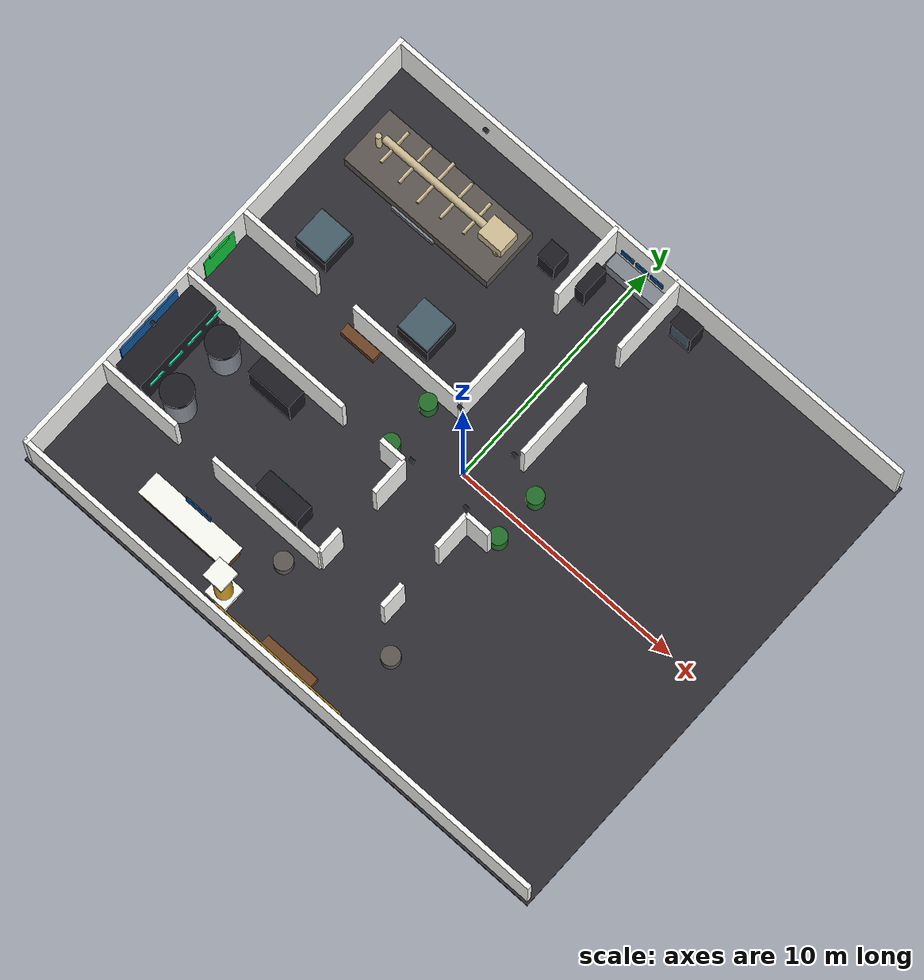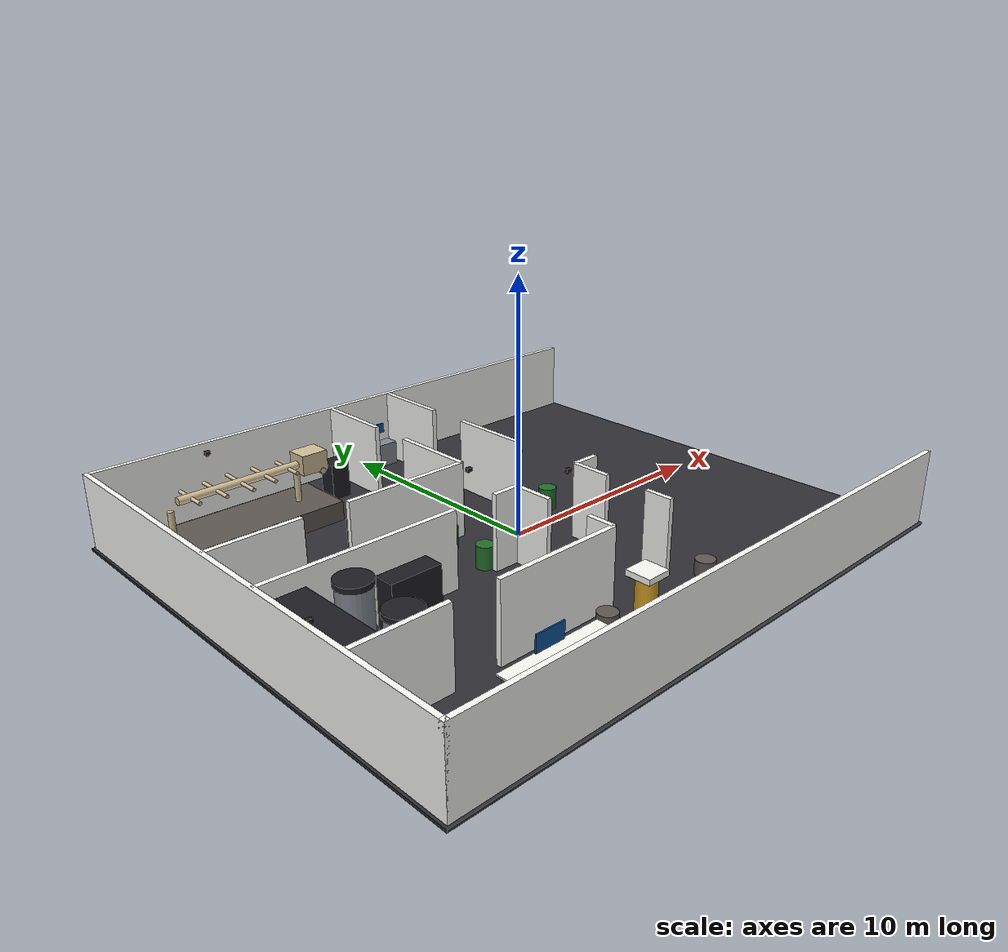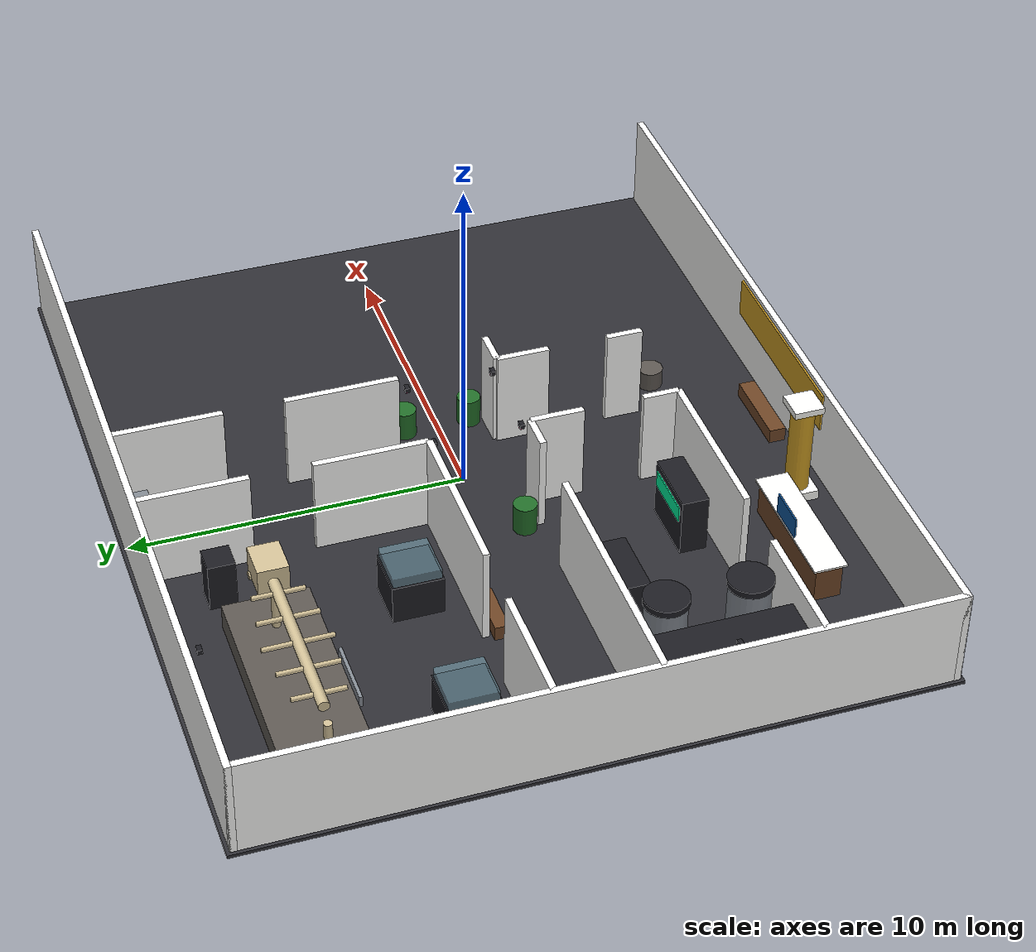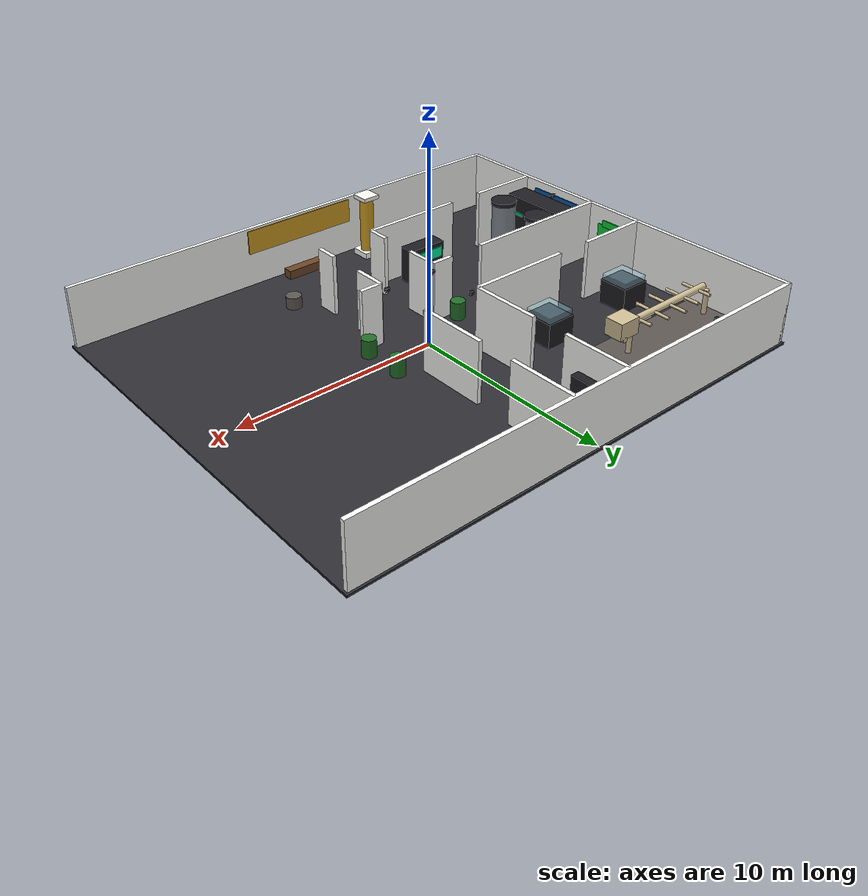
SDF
<sdf version="1.9">
 <world name="museum_world">
  <model name="centennial_robotics_museum">
   <static>true</static>
   <link name="floor">
    <pose>0 0 -0.05 0 0 0.0</pose>
    <visual name="visual">
     <geometry><box><size>24.4 20.4 0.1</size></box></geometry>
     <material>
      <ambient>0.16 0.16 0.18 1.0</ambient>
      <diffuse>0.184 0.184 0.207 1.0</diffuse>
      <specular>0.45 0.45 0.5 1</specular>
      <emissive>0.0 0.0 0.0 1</emissive>
     </material>
    </visual>
    <collision name="collision"><geometry><box><size>24.4 20.4 0.1</size></box></geometry></collision>
   </link>
   <link name="outer_s_0">
    <pose>0.0 -10.0 1.5 0 0 0.0</pose>
    <visual name="visual">
     <geometry><box><size>24.2 0.2 3.0</size></box></geometry>
     <material>
      <ambient>0.88 0.88 0.86 1.0</ambient>
      <diffuse>1.0 1.0 0.9889999999999999 1.0</diffuse>
      <specular>0.1 0.1 0.1 1</specular>
      <emissive>0.0 0.0 0.0 1</emissive>
     </material>
    </visual>
    <collision name="collision"><geometry><box><size>24.2 0.2 3.0</size></box></geometry></collision>
   </link>
   <link name="outer_n_0">
    <pose>0.0 10.0 1.5 0 0 0.0</pose>
    <visual name="visual">
     <geometry><box><size>24.2 0.2 3.0</size></box></geometry>
     <material>
      <ambient>0.88 0.88 0.86 1.0</ambient>
      <diffuse>1.0 1.0 0.9889999999999999 1.0</diffuse>
      <specular>0.1 0.1 0.1 1</specular>
      <emissive>0.0 0.0 0.0 1</emissive>
     </material>
    </visual>
    <collision name="collision"><geometry><box><size>24.2 0.2 3.0</size></box></geometry></collision>
   </link>
   <link name="outer_w_0">
    <pose>-12.0 0.0 1.5 0 0 0.0</pose>
    <visual name="visual">
     <geometry><box><size>0.2 20.2 3.0</size></box></geometry>
     <material>
      <ambient>0.88 0.88 0.86 1.0</ambient>
      <diffuse>1.0 1.0 0.9889999999999999 1.0</diffuse>
      <specular>0.1 0.1 0.1 1</specular>
      <emissive>0.0 0.0 0.0 1</emissive>
     </material>
    </visual>
    <collision name="collision"><geometry><box><size>0.2 20.2 3.0</size></box></geometry></collision>
   </link>
   <link name="div_s_0">
    <pose>-10.2 -6.0 1.5 0 0 0.0</pose>
    <visual name="visual">
     <geometry><box><size>3.5999999999999996 0.2 3.0</size></box></geometry>
     <material>
      <ambient>0.88 0.88 0.86 1.0</ambient>
      <diffuse>1.0 1.0 0.9889999999999999 1.0</diffuse>
      <specular>0.1 0.1 0.1 1</specular>
      <emissive>0.0 0.0 0.0 1</emissive>
     </material>
    </visual>
    <collision name="collision">
     <geometry><box><size>3.5999999999999996 0.2 3.0</size></box></geometry>
    </collision>
   </link>
   <link name="div_s_1">
    <pose>-4.050000000000001 -6.0 1.5 0 0 0.0</pose>
    <visual name="visual">
     <geometry><box><size>5.1000000000000005 0.2 3.0</size></box></geometry>
     <material>
      <ambient>0.88 0.88 0.86 1.0</ambient>
      <diffuse>1.0 1.0 0.9889999999999999 1.0</diffuse>
      <specular>0.1 0.1 0.1 1</specular>
      <emissive>0.0 0.0 0.0 1</emissive>
     </material>
    </visual>
    <collision name="collision">
     <geometry><box><size>5.1000000000000005 0.2 3.0</size></box></geometry>
    </collision>
   </link>
   <link name="div_m_0">
    <pose>-8.2 -1.5 1.5 0 0 0.0</pose>
    <visual name="visual">
     <geometry><box><size>7.6 0.2 3.0</size></box></geometry>
     <material>
      <ambient>0.88 0.88 0.86 1.0</ambient>
      <diffuse>1.0 1.0 0.9889999999999999 1.0</diffuse>
      <specular>0.1 0.1 0.1 1</specular>
      <emissive>0.0 0.0 0.0 1</emissive>
     </material>
    </visual>
    <collision name="collision"><geometry><box><size>7.6 0.2 3.0</size></box></geometry></collision>
   </link>
   <link name="div_m_1">
    <pose>-2.0500000000000003 -1.5 1.5 0 0 0.0</pose>
    <visual name="visual">
     <geometry><box><size>1.1000000000000005 0.2 3.0</size></box></geometry>
     <material>
      <ambient>0.88 0.88 0.86 1.0</ambient>
      <diffuse>1.0 1.0 0.9889999999999999 1.0</diffuse>
      <specular>0.1 0.1 0.1 1</specular>
      <emissive>0.0 0.0 0.0 1</emissive>
     </material>
    </visual>
    <collision name="collision">
     <geometry><box><size>1.1000000000000005 0.2 3.0</size></box></geometry>
    </collision>
   </link>
   <link name="div_m_2">
    <pose>2.0500000000000003 -1.5 1.5 0 0 0.0</pose>
    <visual name="visual">
     <geometry><box><size>1.1000000000000005 0.2 3.0</size></box></geometry>
     <material>
      <ambient>0.88 0.88 0.86 1.0</ambient>
      <diffuse>1.0 1.0 0.9889999999999999 1.0</diffuse>
      <specular>0.1 0.1 0.1 1</specular>
      <emissive>0.0 0.0 0.0 1</emissive>
     </material>
    </visual>
    <collision name="collision">
     <geometry><box><size>1.1000000000000005 0.2 3.0</size></box></geometry>
    </collision>
   </link>
   <link name="div_n_0">
    <pose>-10.2 1.5 1.5 0 0 0.0</pose>
    <visual name="visual">
     <geometry><box><size>3.5999999999999996 0.2 3.0</size></box></geometry>
     <material>
      <ambient>0.88 0.88 0.86 1.0</ambient>
      <diffuse>1.0 1.0 0.9889999999999999 1.0</diffuse>
      <specular>0.1 0.1 0.1 1</specular>
      <emissive>0.0 0.0 0.0 1</emissive>
     </material>
    </visual>
    <collision name="collision">
     <geometry><box><size>3.5999999999999996 0.2 3.0</size></box></geometry>
    </collision>
   </link>
   <link name="div_n_1">
    <pose>-4.050000000000001 1.5 1.5 0 0 0.0</pose>
    <visual name="visual">
     <geometry><box><size>5.1000000000000005 0.2 3.0</size></box></geometry>
     <material>
      <ambient>0.88 0.88 0.86 1.0</ambient>
      <diffuse>1.0 1.0 0.9889999999999999 1.0</diffuse>
      <specular>0.1 0.1 0.1 1</specular>
      <emissive>0.0 0.0 0.0 1</emissive>
     </material>
    </visual>
    <collision name="collision">
     <geometry><box><size>5.1000000000000005 0.2 3.0</size></box></geometry>
    </collision>
   </link>
   <link name="cor_sw_0">
    <pose>-1.5 -5.45 1.5 0 0 0.0</pose>
    <visual name="visual">
     <geometry><box><size>0.2 1.0999999999999996 3.0</size></box></geometry>
     <material>
      <ambient>0.88 0.88 0.86 1.0</ambient>
      <diffuse>1.0 1.0 0.9889999999999999 1.0</diffuse>
      <specular>0.1 0.1 0.1 1</specular>
      <emissive>0.0 0.0 0.0 1</emissive>
     </material>
    </visual>
    <collision name="collision">
     <geometry><box><size>0.2 1.0999999999999996 3.0</size></box></geometry>
    </collision>
   </link>
   <link name="cor_sw_1">
    <pose>-1.5 -2.3000000000000003 1.5 0 0 0.0</pose>
    <visual name="visual">
     <geometry><box><size>0.2 1.6000000000000005 3.0</size></box></geometry>
     <material>
      <ambient>0.88 0.88 0.86 1.0</ambient>
      <diffuse>1.0 1.0 0.9889999999999999 1.0</diffuse>
      <specular>0.1 0.1 0.1 1</specular>
      <emissive>0.0 0.0 0.0 1</emissive>
     </material>
    </visual>
    <collision name="collision">
     <geometry><box><size>0.2 1.6000000000000005 3.0</size></box></geometry>
    </collision>
   </link>
   <link name="cor_se_0">
    <pose>1.5 -5.45 1.5 0 0 0.0</pose>
    <visual name="visual">
     <geometry><box><size>0.2 1.0999999999999996 3.0</size></box></geometry>
     <material>
      <ambient>0.88 0.88 0.86 1.0</ambient>
      <diffuse>1.0 1.0 0.9889999999999999 1.0</diffuse>
      <specular>0.1 0.1 0.1 1</specular>
      <emissive>0.0 0.0 0.0 1</emissive>
     </material>
    </visual>
    <collision name="collision">
     <geometry><box><size>0.2 1.0999999999999996 3.0</size></box></geometry>
    </collision>
   </link>
   <link name="cor_se_1">
    <pose>1.5 -2.3000000000000003 1.5 0 0 0.0</pose>
    <visual name="visual">
     <geometry><box><size>0.2 1.6000000000000005 3.0</size></box></geometry>
     <material>
      <ambient>0.88 0.88 0.86 1.0</ambient>
      <diffuse>1.0 1.0 0.9889999999999999 1.0</diffuse>
      <specular>0.1 0.1 0.1 1</specular>
      <emissive>0.0 0.0 0.0 1</emissive>
     </material>
    </visual>
    <collision name="collision">
     <geometry><box><size>0.2 1.6000000000000005 3.0</size></box></geometry>
    </collision>
   </link>
   <link name="cor_nw_0">
    <pose>-1.5 3.2 1.5 0 0 0.0</pose>
    <visual name="visual">
     <geometry><box><size>0.2 3.4000000000000004 3.0</size></box></geometry>
     <material>
      <ambient>0.88 0.88 0.86 1.0</ambient>
      <diffuse>1.0 1.0 0.9889999999999999 1.0</diffuse>
      <specular>0.1 0.1 0.1 1</specular>
      <emissive>0.0 0.0 0.0 1</emissive>
     </material>
    </visual>
    <collision name="collision">
     <geometry><box><size>0.2 3.4000000000000004 3.0</size></box></geometry>
    </collision>
   </link>
   <link name="cor_nw_1">
    <pose>-1.5 8.35 1.5 0 0 0.0</pose>
    <visual name="visual">
     <geometry><box><size>0.2 3.3 3.0</size></box></geometry>
     <material>
      <ambient>0.88 0.88 0.86 1.0</ambient>
      <diffuse>1.0 1.0 0.9889999999999999 1.0</diffuse>
      <specular>0.1 0.1 0.1 1</specular>
      <emissive>0.0 0.0 0.0 1</emissive>
     </material>
    </visual>
    <collision name="collision"><geometry><box><size>0.2 3.3 3.0</size></box></geometry></collision>
   </link>
   <link name="cor_ne_0">
    <pose>1.5 3.2 1.5 0 0 0.0</pose>
    <visual name="visual">
     <geometry><box><size>0.2 3.4000000000000004 3.0</size></box></geometry>
     <material>
      <ambient>0.88 0.88 0.86 1.0</ambient>
      <diffuse>1.0 1.0 0.9889999999999999 1.0</diffuse>
      <specular>0.1 0.1 0.1 1</specular>
      <emissive>0.0 0.0 0.0 1</emissive>
     </material>
    </visual>
    <collision name="collision">
     <geometry><box><size>0.2 3.4000000000000004 3.0</size></box></geometry>
    </collision>
   </link>
   <link name="cor_ne_1">
    <pose>1.5 8.35 1.5 0 0 0.0</pose>
    <visual name="visual">
     <geometry><box><size>0.2 3.3 3.0</size></box></geometry>
     <material>
      <ambient>0.88 0.88 0.86 1.0</ambient>
      <diffuse>1.0 1.0 0.9889999999999999 1.0</diffuse>
      <specular>0.1 0.1 0.1 1</specular>
      <emissive>0.0 0.0 0.0 1</emissive>
     </material>
    </visual>
    <collision name="collision"><geometry><box><size>0.2 3.3 3.0</size></box></geometry></collision>
   </link>
   <link name="reception_desk">
    <pose>-6.0 -8.0 0.55 0 0 0.0</pose>
    <visual name="visual">
     <geometry><box><size>4.0 0.8 1.1</size></box></geometry>
     <material>
      <ambient>0.38 0.24 0.13 1.0</ambient>
      <diffuse>0.43699999999999994 0.27599999999999997 0.1495 1.0</diffuse>
      <specular>0.2 0.2 0.2 1</specular>
      <emissive>0.0 0.0 0.0 1</emissive>
     </material>
    </visual>
    <collision name="collision"><geometry><box><size>4.0 0.8 1.1</size></box></geometry></collision>
   </link>
   <link name="reception_top">
    <pose>-6.0 -8.0 1.13 0 0 0.0</pose>
    <visual name="visual">
     <geometry><box><size>4.2 1.0 0.06</size></box></geometry>
     <material>
      <ambient>0.9 0.89 0.85 1.0</ambient>
      <diffuse>1.0 1.0 0.9774999999999999 1.0</diffuse>
      <specular>0.8 0.8 0.8 1</specular>
      <emissive>0.0 0.0 0.0 1</emissive>
     </material>
    </visual>
    <collision name="collision"><geometry><box><size>4.2 1.0 0.06</size></box></geometry></collision>
   </link>
   <link name="reception_screen">
    <pose>-6.0 -7.55 1.45 0 0 0.0</pose>
    <visual name="visual">
     <geometry><box><size>1.2 0.05 0.7</size></box></geometry>
     <material>
      <ambient>0.05 0.3 0.55 1.0</ambient>
      <diffuse>0.057499999999999996 0.345 0.6325 1.0</diffuse>
      <specular>0.1 0.1 0.1 1</specular>
      <emissive>0.03 0.25 0.45 1</emissive>
     </material>
    </visual>
   </link>
   <link name="pillar_l_base">
    <pose>-3.5 -9.0 0.15 0 0 0.0</pose>
    <visual name="visual">
     <geometry><box><size>1.0 1.0 0.3</size></box></geometry>
     <material>
      <ambient>0.9 0.89 0.85 1.0</ambient>
      <diffuse>1.0 1.0 0.9774999999999999 1.0</diffuse>
      <specular>0.8 0.8 0.8 1</specular>
      <emissive>0.0 0.0 0.0 1</emissive>
     </material>
    </visual>
    <collision name="collision"><geometry><box><size>1.0 1.0 0.3</size></box></geometry></collision>
   </link>
   <link name="pillar_l">
    <pose>-3.5 -9.0 1.65 0 0 0</pose>
    <visual name="visual">
     <geometry><cylinder><radius>0.35</radius><length>3.0</length></cylinder></geometry>
     <material>
      <ambient>0.72 0.55 0.12 1.0</ambient>
      <diffuse>0.828 0.6325 0.13799999999999998 1.0</diffuse>
      <specular>1.0 0.9 0.6 1</specular>
      <emissive>0.0 0.0 0.0 1</emissive>
     </material>
    </visual>
    <collision name="collision">
     <geometry><cylinder><radius>0.35</radius><length>3.0</length></cylinder></geometry>
    </collision>
   </link>
   <link name="pillar_l_cap">
    <pose>-3.5 -9.0 3.2 0 0 0.0</pose>
    <visual name="visual">
     <geometry><box><size>0.9 0.9 0.2</size></box></geometry>
     <material>
      <ambient>0.9 0.89 0.85 1.0</ambient>
      <diffuse>1.0 1.0 0.9774999999999999 1.0</diffuse>
      <specular>0.8 0.8 0.8 1</specular>
      <emissive>0.0 0.0 0.0 1</emissive>
     </material>
    </visual>
    <collision name="collision"><geometry><box><size>0.9 0.9 0.2</size></box></geometry></collision>
   </link>
   <link name="lobby_bench">
    <pose>0.0 -9.4 0.22 0 0 0.0</pose>
    <visual name="visual">
     <geometry><box><size>2.4 0.5 0.45</size></box></geometry>
     <material>
      <ambient>0.38 0.24 0.13 1.0</ambient>
      <diffuse>0.43699999999999994 0.27599999999999997 0.1495 1.0</diffuse>
      <specular>0.2 0.2 0.2 1</specular>
      <emissive>0.0 0.0 0.0 1</emissive>
     </material>
    </visual>
    <collision name="collision"><geometry><box><size>2.4 0.5 0.45</size></box></geometry></collision>
   </link>
   <link name="welcome_banner">
    <pose>0.0 -9.85 2.3 0 0 0.0</pose>
    <visual name="visual">
     <geometry><box><size>6.0 0.06 1.2</size></box></geometry>
     <material>
      <ambient>0.72 0.55 0.12 1.0</ambient>
      <diffuse>0.828 0.6325 0.13799999999999998 1.0</diffuse>
      <specular>1.0 0.9 0.6 1</specular>
      <emissive>0.0 0.0 0.0 1</emissive>
     </material>
    </visual>
   </link>
   <link name="planter_lobby_m3">
    <pose>-2.6 -6.8 0.3 0 0 0</pose>
    <visual name="visual">
     <geometry><cylinder><radius>0.38</radius><length>0.6</length></cylinder></geometry>
     <material>
      <ambient>0.32 0.3 0.28 1.0</ambient>
      <diffuse>0.368 0.345 0.322 1.0</diffuse>
      <specular>0.1 0.1 0.1 1</specular>
      <emissive>0.0 0.0 0.0 1</emissive>
     </material>
    </visual>
    <collision name="collision">
     <geometry><cylinder><radius>0.38</radius><length>0.6</length></cylinder></geometry>
    </collision>
   </link>
   <link name="planter_lobby_p3">
    <pose>2.6 -6.8 0.3 0 0 0</pose>
    <visual name="visual">
     <geometry><cylinder><radius>0.38</radius><length>0.6</length></cylinder></geometry>
     <material>
      <ambient>0.32 0.3 0.28 1.0</ambient>
      <diffuse>0.368 0.345 0.322 1.0</diffuse>
      <specular>0.1 0.1 0.1 1</specular>
      <emissive>0.0 0.0 0.0 1</emissive>
     </material>
    </visual>
    <collision name="collision">
     <geometry><cylinder><radius>0.38</radius><length>0.6</length></cylinder></geometry>
    </collision>
   </link>
   <link name="mainframe">
    <pose>-11.0 -3.75 1.25 0 0 0.0</pose>
    <visual name="visual">
     <geometry><box><size>1.2 4.0 2.5</size></box></geometry>
     <material>
      <ambient>0.1 0.1 0.12 1.0</ambient>
      <diffuse>0.11499999999999999 0.11499999999999999 0.13799999999999998 1.0</diffuse>
      <specular>0.3 0.3 0.3 1</specular>
      <emissive>0.0 0.0 0.0 1</emissive>
     </material>
    </visual>
    <collision name="collision"><geometry><box><size>1.2 4.0 2.5</size></box></geometry></collision>
   </link>
   <link name="mainframe_glow_0">
    <pose>-10.35 -5.0 1.6 0 0 0.0</pose>
    <visual name="visual">
     <geometry><box><size>0.06 0.7 0.12</size></box></geometry>
     <material>
      <ambient>0.0 0.85 0.55 1.0</ambient>
      <diffuse>0.0 0.9774999999999999 0.6325 1.0</diffuse>
      <specular>0.1 0.1 0.1 1</specular>
      <emissive>0.0 0.95 0.6 1</emissive>
     </material>
    </visual>
   </link>
   <link name="mainframe_glow_1">
    <pose>-10.35 -4.0 1.6 0 0 0.0</pose>
    <visual name="visual">
     <geometry><box><size>0.06 0.7 0.12</size></box></geometry>
     <material>
      <ambient>0.0 0.85 0.55 1.0</ambient>
      <diffuse>0.0 0.9774999999999999 0.6325 1.0</diffuse>
      <specular>0.1 0.1 0.1 1</specular>
      <emissive>0.0 0.95 0.6 1</emissive>
     </material>
    </visual>
   </link>
   <link name="mainframe_glow_2">
    <pose>-10.35 -3.0 1.6 0 0 0.0</pose>
    <visual name="visual">
     <geometry><box><size>0.06 0.7 0.12</size></box></geometry>
     <material>
      <ambient>0.0 0.85 0.55 1.0</ambient>
      <diffuse>0.0 0.9774999999999999 0.6325 1.0</diffuse>
      <specular>0.1 0.1 0.1 1</specular>
      <emissive>0.0 0.95 0.6 1</emissive>
     </material>
    </visual>
   </link>
   <link name="mainframe_glow_3">
    <pose>-10.35 -2.0 1.6 0 0 0.0</pose>
    <visual name="visual">
     <geometry><box><size>0.06 0.7 0.12</size></box></geometry>
     <material>
      <ambient>0.0 0.85 0.55 1.0</ambient>
      <diffuse>0.0 0.9774999999999999 0.6325 1.0</diffuse>
      <specular>0.1 0.1 0.1 1</specular>
      <emissive>0.0 0.95 0.6 1</emissive>
     </material>
    </visual>
   </link>
   <link name="cooling_tower_1">
    <pose>-9.3 -5.0 1.25 0 0 0</pose>
    <visual name="visual">
     <geometry><cylinder><radius>0.6</radius><length>2.5</length></cylinder></geometry>
     <material>
      <ambient>0.45 0.47 0.5 1.0</ambient>
      <diffuse>0.5175 0.5405 0.575 1.0</diffuse>
      <specular>0.7 0.7 0.7 1</specular>
      <emissive>0.0 0.0 0.0 1</emissive>
     </material>
    </visual>
    <collision name="collision">
     <geometry><cylinder><radius>0.6</radius><length>2.5</length></cylinder></geometry>
    </collision>
   </link>
   <link name="cooling_tower_2">
    <pose>-9.3 -2.6 1.25 0 0 0</pose>
    <visual name="visual">
     <geometry><cylinder><radius>0.6</radius><length>2.5</length></cylinder></geometry>
     <material>
      <ambient>0.45 0.47 0.5 1.0</ambient>
      <diffuse>0.5175 0.5405 0.575 1.0</diffuse>
      <specular>0.7 0.7 0.7 1</specular>
      <emissive>0.0 0.0 0.0 1</emissive>
     </material>
    </visual>
    <collision name="collision">
     <geometry><cylinder><radius>0.6</radius><length>2.5</length></cylinder></geometry>
    </collision>
   </link>
   <link name="cooling_cap_1">
    <pose>-9.3 -5.0 2.6 0 0 0</pose>
    <visual name="visual">
     <geometry><cylinder><radius>0.65</radius><length>0.2</length></cylinder></geometry>
     <material>
      <ambient>0.1 0.1 0.12 1.0</ambient>
      <diffuse>0.11499999999999999 0.11499999999999999 0.13799999999999998 1.0</diffuse>
      <specular>0.3 0.3 0.3 1</specular>
      <emissive>0.0 0.0 0.0 1</emissive>
     </material>
    </visual>
   </link>
   <link name="cooling_cap_2">
    <pose>-9.3 -2.6 2.6 0 0 0</pose>
    <visual name="visual">
     <geometry><cylinder><radius>0.65</radius><length>0.2</length></cylinder></geometry>
     <material>
      <ambient>0.1 0.1 0.12 1.0</ambient>
      <diffuse>0.11499999999999999 0.11499999999999999 0.13799999999999998 1.0</diffuse>
      <specular>0.3 0.3 0.3 1</specular>
      <emissive>0.0 0.0 0.0 1</emissive>
     </material>
    </visual>
   </link>
   <link name="server_rack_1">
    <pose>-7.0 -2.3 1.0 0 0 0.0</pose>
    <visual name="visual">
     <geometry><box><size>2.0 0.8 2.0</size></box></geometry>
     <material>
      <ambient>0.1 0.1 0.12 1.0</ambient>
      <diffuse>0.11499999999999999 0.11499999999999999 0.13799999999999998 1.0</diffuse>
      <specular>0.3 0.3 0.3 1</specular>
      <emissive>0.0 0.0 0.0 1</emissive>
     </material>
    </visual>
    <collision name="collision"><geometry><box><size>2.0 0.8 2.0</size></box></geometry></collision>
   </link>
   <link name="server_rack_1_leds">
    <pose>-7.0 -1.88 1.4 0 0 0.0</pose>
    <visual name="visual">
     <geometry><box><size>1.7 0.04 0.6</size></box></geometry>
     <material>
      <ambient>0.0 0.85 0.55 1.0</ambient>
      <diffuse>0.0 0.9774999999999999 0.6325 1.0</diffuse>
      <specular>0.1 0.1 0.1 1</specular>
      <emissive>0.0 0.95 0.6 1</emissive>
     </material>
    </visual>
   </link>
   <link name="server_rack_2">
    <pose>-4.0 -5.2 0.9 0 0 0.0</pose>
    <visual name="visual">
     <geometry><box><size>2.0 0.8 1.8</size></box></geometry>
     <material>
      <ambient>0.1 0.1 0.12 1.0</ambient>
      <diffuse>0.11499999999999999 0.11499999999999999 0.13799999999999998 1.0</diffuse>
      <specular>0.3 0.3 0.3 1</specular>
      <emissive>0.0 0.0 0.0 1</emissive>
     </material>
    </visual>
    <collision name="collision"><geometry><box><size>2.0 0.8 1.8</size></box></geometry></collision>
   </link>
   <link name="server_rack_2_leds">
    <pose>-4.0 -4.78 1.3 0 0 0.0</pose>
    <visual name="visual">
     <geometry><box><size>1.7 0.04 0.5</size></box></geometry>
     <material>
      <ambient>0.0 0.85 0.55 1.0</ambient>
      <diffuse>0.0 0.9774999999999999 0.6325 1.0</diffuse>
      <specular>0.1 0.1 0.1 1</specular>
      <emissive>0.0 0.95 0.6 1</emissive>
     </material>
    </visual>
   </link>
   <link name="ai_wall_display">
    <pose>-11.85 -3.75 1.8 0 0 0.0</pose>
    <visual name="visual">
     <geometry><box><size>0.06 3.0 1.6</size></box></geometry>
     <material>
      <ambient>0.05 0.3 0.55 1.0</ambient>
      <diffuse>0.057499999999999996 0.345 0.6325 1.0</diffuse>
      <specular>0.1 0.1 0.1 1</specular>
      <emissive>0.03 0.25 0.45 1</emissive>
     </material>
    </visual>
   </link>
   <link name="rock_pedestal">
    <pose>-7.5 7.0 0.4 0 0 0.0</pose>
    <visual name="visual">
     <geometry><box><size>7.0 2.5 0.8</size></box></geometry>
     <material>
      <ambient>0.32 0.3 0.28 1.0</ambient>
      <diffuse>0.368 0.345 0.322 1.0</diffuse>
      <specular>0.1 0.1 0.1 1</specular>
      <emissive>0.0 0.0 0.0 1</emissive>
     </material>
    </visual>
    <collision name="collision"><geometry><box><size>7.0 2.5 0.8</size></box></geometry></collision>
   </link>
   <link name="dino_spine">
    <pose>-7.5 7.0 2.3 0 1.5708 0</pose>
    <visual name="visual">
     <geometry><cylinder><radius>0.16</radius><length>5.2</length></cylinder></geometry>
     <material>
      <ambient>0.72 0.66 0.52 1.0</ambient>
      <diffuse>0.828 0.759 0.598 1.0</diffuse>
      <specular>0.15 0.15 0.15 1</specular>
      <emissive>0.0 0.0 0.0 1</emissive>
     </material>
    </visual>
   </link>
   <link name="dino_rib_0">
    <pose>-9.6 7.0 2.3 1.5708 0 0</pose>
    <visual name="visual">
     <geometry><cylinder><radius>0.07</radius><length>1.5</length></cylinder></geometry>
     <material>
      <ambient>0.72 0.66 0.52 1.0</ambient>
      <diffuse>0.828 0.759 0.598 1.0</diffuse>
      <specular>0.15 0.15 0.15 1</specular>
      <emissive>0.0 0.0 0.0 1</emissive>
     </material>
    </visual>
   </link>
   <link name="dino_rib_1">
    <pose>-8.6 7.0 2.3 1.5708 0 0</pose>
    <visual name="visual">
     <geometry><cylinder><radius>0.07</radius><length>1.75</length></cylinder></geometry>
     <material>
      <ambient>0.72 0.66 0.52 1.0</ambient>
      <diffuse>0.828 0.759 0.598 1.0</diffuse>
      <specular>0.15 0.15 0.15 1</specular>
      <emissive>0.0 0.0 0.0 1</emissive>
     </material>
    </visual>
   </link>
   <link name="dino_rib_2">
    <pose>-7.6 7.0 2.3 1.5708 0 0</pose>
    <visual name="visual">
     <geometry><cylinder><radius>0.07</radius><length>2.0</length></cylinder></geometry>
     <material>
      <ambient>0.72 0.66 0.52 1.0</ambient>
      <diffuse>0.828 0.759 0.598 1.0</diffuse>
      <specular>0.15 0.15 0.15 1</specular>
      <emissive>0.0 0.0 0.0 1</emissive>
     </material>
    </visual>
   </link>
   <link name="dino_rib_3">
    <pose>-6.6 7.0 2.3 1.5708 0 0</pose>
    <visual name="visual">
     <geometry><cylinder><radius>0.07</radius><length>1.75</length></cylinder></geometry>
     <material>
      <ambient>0.72 0.66 0.52 1.0</ambient>
      <diffuse>0.828 0.759 0.598 1.0</diffuse>
      <specular>0.15 0.15 0.15 1</specular>
      <emissive>0.0 0.0 0.0 1</emissive>
     </material>
    </visual>
   </link>
   <link name="dino_rib_4">
    <pose>-5.6 7.0 2.3 1.5708 0 0</pose>
    <visual name="visual">
     <geometry><cylinder><radius>0.07</radius><length>1.5</length></cylinder></geometry>
     <material>
      <ambient>0.72 0.66 0.52 1.0</ambient>
      <diffuse>0.828 0.759 0.598 1.0</diffuse>
      <specular>0.15 0.15 0.15 1</specular>
      <emissive>0.0 0.0 0.0 1</emissive>
     </material>
    </visual>
   </link>
   <link name="dino_skull">
    <pose>-4.6 7.0 2.35 0 0 0.0</pose>
    <visual name="visual">
     <geometry><box><size>1.1 0.9 0.8</size></box></geometry>
     <material>
      <ambient>0.72 0.66 0.52 1.0</ambient>
      <diffuse>0.828 0.759 0.598 1.0</diffuse>
      <specular>0.15 0.15 0.15 1</specular>
      <emissive>0.0 0.0 0.0 1</emissive>
     </material>
    </visual>
   </link>
   <link name="dino_jaw">
    <pose>-4.3 7.0 1.95 1.5708 0 0</pose>
    <visual name="visual">
     <geometry><cylinder><radius>0.12</radius><length>1.0</length></cylinder></geometry>
     <material>
      <ambient>0.72 0.66 0.52 1.0</ambient>
      <diffuse>0.828 0.759 0.598 1.0</diffuse>
      <specular>0.15 0.15 0.15 1</specular>
      <emissive>0.0 0.0 0.0 1</emissive>
     </material>
    </visual>
   </link>
   <link name="dino_leg_0">
    <pose>-10.4 7.0 1.2 0 0 0</pose>
    <visual name="visual">
     <geometry><cylinder><radius>0.12</radius><length>1.6</length></cylinder></geometry>
     <material>
      <ambient>0.72 0.66 0.52 1.0</ambient>
      <diffuse>0.828 0.759 0.598 1.0</diffuse>
      <specular>0.15 0.15 0.15 1</specular>
      <emissive>0.0 0.0 0.0 1</emissive>
     </material>
    </visual>
   </link>
   <link name="dino_leg_1">
    <pose>-5.2 7.0 1.2 0 0 0</pose>
    <visual name="visual">
     <geometry><cylinder><radius>0.12</radius><length>1.6</length></cylinder></geometry>
     <material>
      <ambient>0.72 0.66 0.52 1.0</ambient>
      <diffuse>0.828 0.759 0.598 1.0</diffuse>
      <specular>0.15 0.15 0.15 1</specular>
      <emissive>0.0 0.0 0.0 1</emissive>
     </material>
    </visual>
   </link>
   <link name="fossil_case_1">
    <pose>-9.5 3.0 0.6 0 0 0.0</pose>
    <visual name="visual">
     <geometry><box><size>1.5 1.5 1.2</size></box></geometry>
     <material>
      <ambient>0.1 0.1 0.12 1.0</ambient>
      <diffuse>0.11499999999999999 0.11499999999999999 0.13799999999999998 1.0</diffuse>
      <specular>0.3 0.3 0.3 1</specular>
      <emissive>0.0 0.0 0.0 1</emissive>
     </material>
    </visual>
    <collision name="collision"><geometry><box><size>1.5 1.5 1.2</size></box></geometry></collision>
   </link>
   <link name="fossil_glass_1">
    <pose>-9.5 3.0 1.35 0 0 0.0</pose>
    <visual name="visual">
     <geometry><box><size>1.4 1.4 0.3</size></box></geometry>
     <material>
      <ambient>0.55 0.78 0.85 0.35</ambient>
      <diffuse>0.6325 0.8969999999999999 0.9774999999999999 0.35</diffuse>
      <specular>1.0 1.0 1.0 1</specular>
      <emissive>0.0 0.0 0.0 1</emissive>
     </material>
     <transparency>0.65</transparency>
    </visual>
   </link>
   <link name="fossil_case_2">
    <pose>-4.5 3.0 0.6 0 0 0.0</pose>
    <visual name="visual">
     <geometry><box><size>1.5 1.5 1.2</size></box></geometry>
     <material>
      <ambient>0.1 0.1 0.12 1.0</ambient>
      <diffuse>0.11499999999999999 0.11499999999999999 0.13799999999999998 1.0</diffuse>
      <specular>0.3 0.3 0.3 1</specular>
      <emissive>0.0 0.0 0.0 1</emissive>
     </material>
    </visual>
    <collision name="collision"><geometry><box><size>1.5 1.5 1.2</size></box></geometry></collision>
   </link>
   <link name="fossil_glass_2">
    <pose>-4.5 3.0 1.35 0 0 0.0</pose>
    <visual name="visual">
     <geometry><box><size>1.4 1.4 0.3</size></box></geometry>
     <material>
      <ambient>0.55 0.78 0.85 0.35</ambient>
      <diffuse>0.6325 0.8969999999999999 0.9774999999999999 0.35</diffuse>
      <specular>1.0 1.0 1.0 1</specular>
      <emissive>0.0 0.0 0.0 1</emissive>
     </material>
     <transparency>0.65</transparency>
    </visual>
   </link>
   <link name="dino_kiosk">
    <pose>-2.8 8.0 0.75 0 0 0.0</pose>
    <visual name="visual">
     <geometry><box><size>0.8 0.8 1.5</size></box></geometry>
     <material>
      <ambient>0.1 0.1 0.12 1.0</ambient>
      <diffuse>0.11499999999999999 0.11499999999999999 0.13799999999999998 1.0</diffuse>
      <specular>0.3 0.3 0.3 1</specular>
      <emissive>0.0 0.0 0.0 1</emissive>
     </material>
    </visual>
    <collision name="collision"><geometry><box><size>0.8 0.8 1.5</size></box></geometry></collision>
   </link>
   <link name="dino_placard">
    <pose>-7.5 5.6 0.55 0 0 0.0</pose>
    <visual name="visual">
     <geometry><box><size>2.0 0.1 0.35</size></box></geometry>
     <material>
      <ambient>0.45 0.47 0.5 1.0</ambient>
      <diffuse>0.5175 0.5405 0.575 1.0</diffuse>
      <specular>0.7 0.7 0.7 1</specular>
      <emissive>0.0 0.0 0.0 1</emissive>
     </material>
    </visual>
   </link>
   <link name="vending_machine">
    <pose>2.6 9.2 0.9 0 0 0.0</pose>
    <visual name="visual">
     <geometry><box><size>1.0 0.7 1.8</size></box></geometry>
     <material>
      <ambient>0.1 0.1 0.12 1.0</ambient>
      <diffuse>0.11499999999999999 0.11499999999999999 0.13799999999999998 1.0</diffuse>
      <specular>0.3 0.3 0.3 1</specular>
      <emissive>0.0 0.0 0.0 1</emissive>
     </material>
    </visual>
    <collision name="collision"><geometry><box><size>1.0 0.7 1.8</size></box></geometry></collision>
   </link>
   <link name="vending_glass">
    <pose>2.6 8.83 1.1 0 0 0.0</pose>
    <visual name="visual">
     <geometry><box><size>0.8 0.05 1.2</size></box></geometry>
     <material>
      <ambient>0.55 0.78 0.85 0.35</ambient>
      <diffuse>0.6325 0.8969999999999999 0.9774999999999999 0.35</diffuse>
      <specular>1.0 1.0 1.0 1</specular>
      <emissive>0.0 0.0 0.0 1</emissive>
     </material>
     <transparency>0.65</transparency>
    </visual>
   </link>
   <link name="security_desk">
    <pose>0.0 9.4 0.5 0 0 0.0</pose>
    <visual name="visual">
     <geometry><box><size>2.4 0.6 1.0</size></box></geometry>
     <material>
      <ambient>0.45 0.47 0.5 1.0</ambient>
      <diffuse>0.5175 0.5405 0.575 1.0</diffuse>
      <specular>0.7 0.7 0.7 1</specular>
      <emissive>0.0 0.0 0.0 1</emissive>
     </material>
    </visual>
    <collision name="collision"><geometry><box><size>2.4 0.6 1.0</size></box></geometry></collision>
   </link>
   <link name="security_monitor_0">
    <pose>-0.7 9.72 1.55 0 0 0.0</pose>
    <visual name="visual">
     <geometry><box><size>0.6 0.05 0.42</size></box></geometry>
     <material>
      <ambient>0.05 0.3 0.55 1.0</ambient>
      <diffuse>0.057499999999999996 0.345 0.6325 1.0</diffuse>
      <specular>0.1 0.1 0.1 1</specular>
      <emissive>0.03 0.25 0.45 1</emissive>
     </material>
    </visual>
   </link>
   <link name="security_monitor_1">
    <pose>0.0 9.72 1.55 0 0 0.0</pose>
    <visual name="visual">
     <geometry><box><size>0.6 0.05 0.42</size></box></geometry>
     <material>
      <ambient>0.05 0.3 0.55 1.0</ambient>
      <diffuse>0.057499999999999996 0.345 0.6325 1.0</diffuse>
      <specular>0.1 0.1 0.1 1</specular>
      <emissive>0.03 0.25 0.45 1</emissive>
     </material>
    </visual>
   </link>
   <link name="security_monitor_2">
    <pose>0.7 9.72 1.55 0 0 0.0</pose>
    <visual name="visual">
     <geometry><box><size>0.6 0.05 0.42</size></box></geometry>
     <material>
      <ambient>0.05 0.3 0.55 1.0</ambient>
      <diffuse>0.057499999999999996 0.345 0.6325 1.0</diffuse>
      <specular>0.1 0.1 0.1 1</specular>
      <emissive>0.03 0.25 0.45 1</emissive>
     </material>
    </visual>
   </link>
   <link name="server_closet">
    <pose>-1.15 8.2 0.85 0 0 0.0</pose>
    <visual name="visual">
     <geometry><box><size>0.45 1.2 1.7</size></box></geometry>
     <material>
      <ambient>0.1 0.1 0.12 1.0</ambient>
      <diffuse>0.11499999999999999 0.11499999999999999 0.13799999999999998 1.0</diffuse>
      <specular>0.3 0.3 0.3 1</specular>
      <emissive>0.0 0.0 0.0 1</emissive>
     </material>
    </visual>
    <collision name="collision"><geometry><box><size>0.45 1.2 1.7</size></box></geometry></collision>
   </link>
   <link name="corridor_plant_0">
    <pose>-2.6 1.0 0.45 0 0 0</pose>
    <visual name="visual">
     <geometry><cylinder><radius>0.35</radius><length>0.9</length></cylinder></geometry>
     <material>
      <ambient>0.12 0.38 0.14 1.0</ambient>
      <diffuse>0.13799999999999998 0.43699999999999994 0.161 1.0</diffuse>
      <specular>0.1 0.1 0.1 1</specular>
      <emissive>0.0 0.0 0.0 1</emissive>
     </material>
    </visual>
    <collision name="collision">
     <geometry><cylinder><radius>0.35</radius><length>0.9</length></cylinder></geometry>
    </collision>
   </link>
   <link name="corridor_plant_1">
    <pose>2.6 1.0 0.45 0 0 0</pose>
    <visual name="visual">
     <geometry><cylinder><radius>0.35</radius><length>0.9</length></cylinder></geometry>
     <material>
      <ambient>0.12 0.38 0.14 1.0</ambient>
      <diffuse>0.13799999999999998 0.43699999999999994 0.161 1.0</diffuse>
      <specular>0.1 0.1 0.1 1</specular>
      <emissive>0.0 0.0 0.0 1</emissive>
     </material>
    </visual>
    <collision name="collision">
     <geometry><cylinder><radius>0.35</radius><length>0.9</length></cylinder></geometry>
    </collision>
   </link>
   <link name="corridor_plant_2">
    <pose>-2.6 -1.0 0.45 0 0 0</pose>
    <visual name="visual">
     <geometry><cylinder><radius>0.35</radius><length>0.9</length></cylinder></geometry>
     <material>
      <ambient>0.12 0.38 0.14 1.0</ambient>
      <diffuse>0.13799999999999998 0.43699999999999994 0.161 1.0</diffuse>
      <specular>0.1 0.1 0.1 1</specular>
      <emissive>0.0 0.0 0.0 1</emissive>
     </material>
    </visual>
    <collision name="collision">
     <geometry><cylinder><radius>0.35</radius><length>0.9</length></cylinder></geometry>
    </collision>
   </link>
   <link name="corridor_plant_3">
    <pose>2.6 -1.0 0.45 0 0 0</pose>
    <visual name="visual">
     <geometry><cylinder><radius>0.35</radius><length>0.9</length></cylinder></geometry>
     <material>
      <ambient>0.12 0.38 0.14 1.0</ambient>
      <diffuse>0.13799999999999998 0.43699999999999994 0.161 1.0</diffuse>
      <specular>0.1 0.1 0.1 1</specular>
      <emissive>0.0 0.0 0.0 1</emissive>
     </material>
    </visual>
    <collision name="collision">
     <geometry><cylinder><radius>0.35</radius><length>0.9</length></cylinder></geometry>
    </collision>
   </link>
   <link name="corridor_bench_w">
    <pose>-6.0 1.1 0.22 0 0 0.0</pose>
    <visual name="visual">
     <geometry><box><size>1.6 0.42 0.45</size></box></geometry>
     <material>
      <ambient>0.38 0.24 0.13 1.0</ambient>
      <diffuse>0.43699999999999994 0.27599999999999997 0.1495 1.0</diffuse>
      <specular>0.2 0.2 0.2 1</specular>
      <emissive>0.0 0.0 0.0 1</emissive>
     </material>
    </visual>
    <collision name="collision"><geometry><box><size>1.6 0.42 0.45</size></box></geometry></collision>
   </link>
   <link name="fire_exit_sign">
    <pose>-11.85 0.0 2.2 0 0 0.0</pose>
    <visual name="visual">
     <geometry><box><size>0.06 1.0 0.35</size></box></geometry>
     <material>
      <ambient>0.05 0.7 0.2 1.0</ambient>
      <diffuse>0.057499999999999996 0.8049999999999999 0.22999999999999998 1.0</diffuse>
      <specular>0.1 0.1 0.1 1</specular>
      <emissive>0.05 0.9 0.25 1</emissive>
     </material>
    </visual>
   </link>
   <link name="fire_exit_door">
    <pose>-11.88 0.0 1.05 0 0 0.0</pose>
    <visual name="visual">
     <geometry><box><size>0.04 1.6 2.1</size></box></geometry>
     <material>
      <ambient>0.05 0.7 0.2 1.0</ambient>
      <diffuse>0.057499999999999996 0.8049999999999999 0.22999999999999998 1.0</diffuse>
      <specular>0.1 0.1 0.1 1</specular>
      <emissive>0.05 0.9 0.25 1</emissive>
     </material>
    </visual>
   </link>
   <link name="camera_0">
    <pose>-1.3 -1.3 2.7 0 0 0.0</pose>
    <visual name="visual">
     <geometry><box><size>0.22 0.14 0.14</size></box></geometry>
     <material>
      <ambient>0.1 0.1 0.12 1.0</ambient>
      <diffuse>0.11499999999999999 0.11499999999999999 0.13799999999999998 1.0</diffuse>
      <specular>0.3 0.3 0.3 1</specular>
      <emissive>0.0 0.0 0.0 1</emissive>
     </material>
    </visual>
   </link>
   <link name="camera_lens_0">
    <pose>-1.3 -1.3 2.62 0 0 0.0</pose>
    <visual name="visual">
     <geometry><sphere><radius>0.07</radius></sphere></geometry>
     <material>
      <ambient>0.85 0.15 0.45 1.0</ambient>
      <diffuse>0.9774999999999999 0.1725 0.5175 1.0</diffuse>
      <specular>0.1 0.1 0.1 1</specular>
      <emissive>0.75 0.1 0.38 1</emissive>
     </material>
    </visual>
   </link>
   <link name="camera_1">
    <pose>1.3 1.3 2.7 0 0 0.0</pose>
    <visual name="visual">
     <geometry><box><size>0.22 0.14 0.14</size></box></geometry>
     <material>
      <ambient>0.1 0.1 0.12 1.0</ambient>
      <diffuse>0.11499999999999999 0.11499999999999999 0.13799999999999998 1.0</diffuse>
      <specular>0.3 0.3 0.3 1</specular>
      <emissive>0.0 0.0 0.0 1</emissive>
     </material>
    </visual>
   </link>
   <link name="camera_lens_1">
    <pose>1.3 1.3 2.62 0 0 0.0</pose>
    <visual name="visual">
     <geometry><sphere><radius>0.07</radius></sphere></geometry>
     <material>
      <ambient>0.85 0.15 0.45 1.0</ambient>
      <diffuse>0.9774999999999999 0.1725 0.5175 1.0</diffuse>
      <specular>0.1 0.1 0.1 1</specular>
      <emissive>0.75 0.1 0.38 1</emissive>
     </material>
    </visual>
   </link>
   <link name="camera_2">
    <pose>-1.3 1.3 2.7 0 0 0.0</pose>
    <visual name="visual">
     <geometry><box><size>0.22 0.14 0.14</size></box></geometry>
     <material>
      <ambient>0.1 0.1 0.12 1.0</ambient>
      <diffuse>0.11499999999999999 0.11499999999999999 0.13799999999999998 1.0</diffuse>
      <specular>0.3 0.3 0.3 1</specular>
      <emissive>0.0 0.0 0.0 1</emissive>
     </material>
    </visual>
   </link>
   <link name="camera_lens_2">
    <pose>-1.3 1.3 2.62 0 0 0.0</pose>
    <visual name="visual">
     <geometry><sphere><radius>0.07</radius></sphere></geometry>
     <material>
      <ambient>0.85 0.15 0.45 1.0</ambient>
      <diffuse>0.9774999999999999 0.1725 0.5175 1.0</diffuse>
      <specular>0.1 0.1 0.1 1</specular>
      <emissive>0.75 0.1 0.38 1</emissive>
     </material>
    </visual>
   </link>
   <link name="camera_3">
    <pose>1.3 -1.3 2.7 0 0 0.0</pose>
    <visual name="visual">
     <geometry><box><size>0.22 0.14 0.14</size></box></geometry>
     <material>
      <ambient>0.1 0.1 0.12 1.0</ambient>
      <diffuse>0.11499999999999999 0.11499999999999999 0.13799999999999998 1.0</diffuse>
      <specular>0.3 0.3 0.3 1</specular>
      <emissive>0.0 0.0 0.0 1</emissive>
     </material>
    </visual>
   </link>
   <link name="camera_lens_3">
    <pose>1.3 -1.3 2.62 0 0 0.0</pose>
    <visual name="visual">
     <geometry><sphere><radius>0.07</radius></sphere></geometry>
     <material>
      <ambient>0.85 0.15 0.45 1.0</ambient>
      <diffuse>0.9774999999999999 0.1725 0.5175 1.0</diffuse>
      <specular>0.1 0.1 0.1 1</specular>
      <emissive>0.75 0.1 0.38 1</emissive>
     </material>
    </visual>
   </link>
   <link name="camera_4">
    <pose>-11.6 -3.75 2.7 0 0 0.0</pose>
    <visual name="visual">
     <geometry><box><size>0.22 0.14 0.14</size></box></geometry>
     <material>
      <ambient>0.1 0.1 0.12 1.0</ambient>
      <diffuse>0.11499999999999999 0.11499999999999999 0.13799999999999998 1.0</diffuse>
      <specular>0.3 0.3 0.3 1</specular>
      <emissive>0.0 0.0 0.0 1</emissive>
     </material>
    </visual>
   </link>
   <link name="camera_lens_4">
    <pose>-11.6 -3.75 2.62 0 0 0.0</pose>
    <visual name="visual">
     <geometry><sphere><radius>0.07</radius></sphere></geometry>
     <material>
      <ambient>0.85 0.15 0.45 1.0</ambient>
      <diffuse>0.9774999999999999 0.1725 0.5175 1.0</diffuse>
      <specular>0.1 0.1 0.1 1</specular>
      <emissive>0.75 0.1 0.38 1</emissive>
     </material>
    </visual>
   </link>
   <link name="camera_6">
    <pose>-7.5 9.6 2.7 0 0 0.0</pose>
    <visual name="visual">
     <geometry><box><size>0.22 0.14 0.14</size></box></geometry>
     <material>
      <ambient>0.1 0.1 0.12 1.0</ambient>
      <diffuse>0.11499999999999999 0.11499999999999999 0.13799999999999998 1.0</diffuse>
      <specular>0.3 0.3 0.3 1</specular>
      <emissive>0.0 0.0 0.0 1</emissive>
     </material>
    </visual>
   </link>
   <link name="camera_lens_6">
    <pose>-7.5 9.6 2.62 0 0 0.0</pose>
    <visual name="visual">
     <geometry><sphere><radius>0.07</radius></sphere></geometry>
     <material>
      <ambient>0.85 0.15 0.45 1.0</ambient>
      <diffuse>0.9774999999999999 0.1725 0.5175 1.0</diffuse>
      <specular>0.1 0.1 0.1 1</specular>
      <emissive>0.75 0.1 0.38 1</emissive>
     </material>
    </visual>
   </link>
  </model>
 </world>
</sdf>
